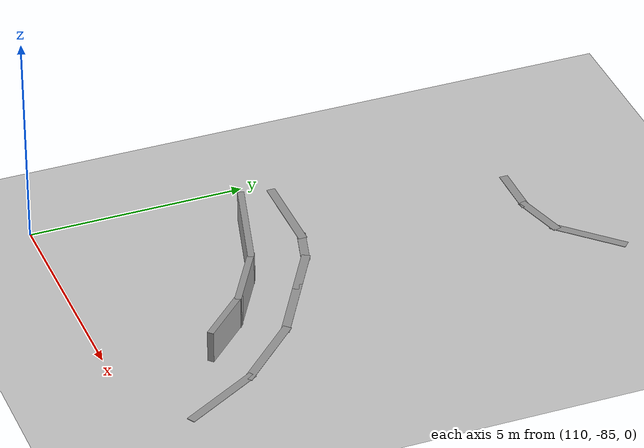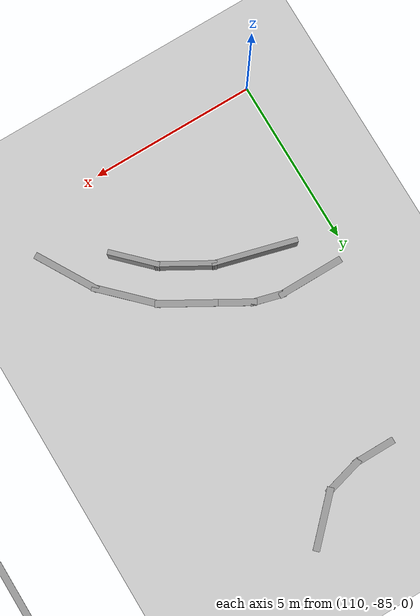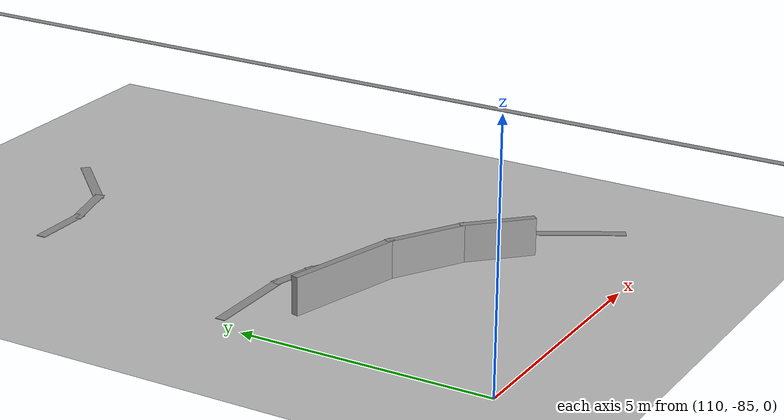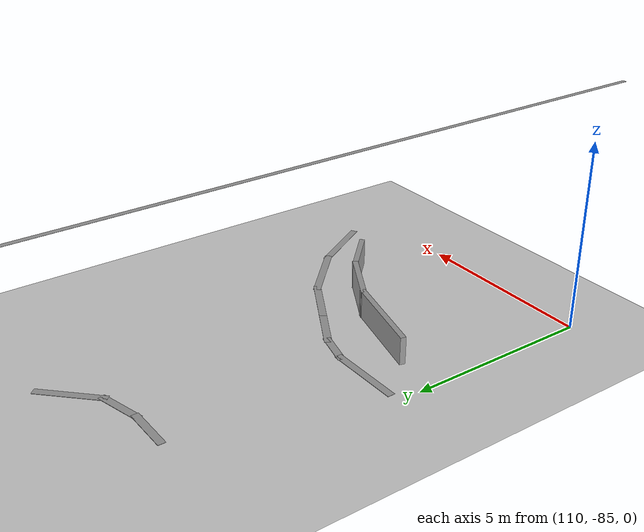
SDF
<sdf version="1.6">
 <world name="default">
  <model name="ground_plane">
   <static>1</static>
   <link name="link">
    <collision name="collision">
     <geometry><plane><normal>0 0 1</normal><size>100 100</size></plane></geometry>
     <surface>
      <contact><collide_bitmask>65535</collide_bitmask></contact>
      <friction><ode><mu>100</mu><mu2>50</mu2></ode></friction>
     </surface>
    </collision>
    <visual name="visual">
     <cast_shadows>0</cast_shadows>
     <geometry><plane><normal>0 0 1</normal><size>100 100</size></plane></geometry>
     <material>
      <script><uri>file://media/materials/scripts/gazebo.material</uri><name>Gazebo/Grey</name></script>
     </material>
    </visual>
   </link>
  </model>
  <model name="GercekDuvarSeritKoyu1">
   <link name="Wall_183">
    <pose>27.6816 55.3719 0 0 0 -2.35619</pose>
    <inertial>
     <mass>1</mass>
     <inertia><ixx>1</ixx><ixy>0</ixy><ixz>0</ixz><iyy>1</iyy><iyz>0</iyz><izz>1</izz></inertia>
    </inertial>
    <visual name="Wall_183_Visual">
     <pose>0 0 0.375 0 -0 0</pose>
     <geometry><box><size>1.5 0.15 0.75</size></box></geometry>
     <material>
      <script><uri>file://media/materials/scripts/gazebo.material</uri><name>Gazebo/Grey</name></script>
      <ambient>0.5 0.5 0.5 1</ambient>
      <shader type="pixel"><normal_map>__default__</normal_map></shader>
      <diffuse>0.7 0.7 0.7 1</diffuse>
      <specular>0.01 0.01 0.01 1</specular>
      <emissive>0 0 0 1</emissive>
     </material>
     <meta><layer>0</layer></meta>
    </visual>
    <collision name="Wall_183_Collision">
     <pose>0 0 0.375 0 -0 0</pose>
     <geometry><box><size>1.5 0.15 0.75</size></box></geometry>
     <surface>
      <friction>
       <ode><mu>1</mu><mu2>1</mu2><fdir1>0 0 0</fdir1><slip1>0</slip1><slip2>0</slip2></ode>
       <torsional>
        <coefficient>1</coefficient>
        <patch_radius>0</patch_radius>
        <surface_radius>0</surface_radius>
        <use_patch_radius>1</use_patch_radius>
        <ode><slip>0</slip></ode>
       </torsional>
      </friction>
      <bounce><restitution_coefficient>0</restitution_coefficient><threshold>1e+06</threshold></bounce>
      <contact>
       <collide_without_contact>0</collide_without_contact>
       <collide_without_contact_bitmask>1</collide_without_contact_bitmask>
       <collide_bitmask>1</collide_bitmask>
       <ode>
        <soft_cfm>0</soft_cfm>
        <soft_erp>0.2</soft_erp>
        <kp>1e+13</kp>
        <kd>1</kd>
        <max_vel>0.01</max_vel>
        <min_depth>0</min_depth>
       </ode>
       <bullet>
        <split_impulse>1</split_impulse>
        <split_impulse_penetration_threshold>-0.01</split_impulse_penetration_threshold>
        <soft_cfm>0</soft_cfm>
        <soft_erp>0.2</soft_erp>
        <kp>1e+13</kp>
        <kd>1</kd>
       </bullet>
      </contact>
     </surface>
    </collision>
   </link>
   <link name="Wall_184">
    <pose>26.8041 54.2019 0 0 0 -2.09459</pose>
    <inertial>
     <mass>1</mass>
     <inertia><ixx>1</ixx><ixy>0</ixy><ixz>0</ixz><iyy>1</iyy><iyz>0</iyz><izz>1</izz></inertia>
    </inertial>
    <visual name="Wall_184_Visual">
     <pose>0 0 0.375 0 -0 0</pose>
     <geometry><box><size>1.75 0.15 0.75</size></box></geometry>
     <material>
      <script><uri>file://media/materials/scripts/gazebo.material</uri><name>Gazebo/Grey</name></script>
      <ambient>0.5 0.5 0.5 1</ambient>
      <shader type="pixel"><normal_map>__default__</normal_map></shader>
      <diffuse>0.7 0.7 0.7 1</diffuse>
      <specular>0.01 0.01 0.01 1</specular>
      <emissive>0 0 0 1</emissive>
     </material>
     <meta><layer>0</layer></meta>
    </visual>
    <collision name="Wall_184_Collision">
     <pose>0 0 0.375 0 -0 0</pose>
     <geometry><box><size>1.75 0.15 0.75</size></box></geometry>
     <surface>
      <friction>
       <ode><mu>1</mu><mu2>1</mu2><fdir1>0 0 0</fdir1><slip1>0</slip1><slip2>0</slip2></ode>
       <torsional>
        <coefficient>1</coefficient>
        <patch_radius>0</patch_radius>
        <surface_radius>0</surface_radius>
        <use_patch_radius>1</use_patch_radius>
        <ode><slip>0</slip></ode>
       </torsional>
      </friction>
      <bounce><restitution_coefficient>0</restitution_coefficient><threshold>1e+06</threshold></bounce>
      <contact>
       <collide_without_contact>0</collide_without_contact>
       <collide_without_contact_bitmask>1</collide_without_contact_bitmask>
       <collide_bitmask>1</collide_bitmask>
       <ode>
        <soft_cfm>0</soft_cfm>
        <soft_erp>0.2</soft_erp>
        <kp>1e+13</kp>
        <kd>1</kd>
        <max_vel>0.01</max_vel>
        <min_depth>0</min_depth>
       </ode>
       <bullet>
        <split_impulse>1</split_impulse>
        <split_impulse_penetration_threshold>-0.01</split_impulse_penetration_threshold>
        <soft_cfm>0</soft_cfm>
        <soft_erp>0.2</soft_erp>
        <kp>1e+13</kp>
        <kd>1</kd>
       </bullet>
      </contact>
     </surface>
    </collision>
   </link>
   <link name="Wall_185">
    <pose>26.1001 52.3744 0 0 0 -1.83249</pose>
    <inertial>
     <mass>1</mass>
     <inertia><ixx>1</ixx><ixy>0</ixy><ixz>0</ixz><iyy>1</iyy><iyz>0</iyz><izz>1</izz></inertia>
    </inertial>
    <visual name="Wall_185_Visual">
     <pose>0 0 0.375 0 -0 0</pose>
     <geometry><box><size>2.5 0.15 0.75</size></box></geometry>
     <material>
      <script><uri>file://media/materials/scripts/gazebo.material</uri><name>Gazebo/Grey</name></script>
      <ambient>0.5 0.5 0.5 1</ambient>
      <shader type="pixel"><normal_map>__default__</normal_map></shader>
      <diffuse>0.7 0.7 0.7 1</diffuse>
      <specular>0.01 0.01 0.01 1</specular>
      <emissive>0 0 0 1</emissive>
     </material>
     <meta><layer>0</layer></meta>
    </visual>
    <collision name="Wall_185_Collision">
     <pose>0 0 0.375 0 -0 0</pose>
     <geometry><box><size>2.5 0.15 0.75</size></box></geometry>
     <surface>
      <friction>
       <ode><mu>1</mu><mu2>1</mu2><fdir1>0 0 0</fdir1><slip1>0</slip1><slip2>0</slip2></ode>
       <torsional>
        <coefficient>1</coefficient>
        <patch_radius>0</patch_radius>
        <surface_radius>0</surface_radius>
        <use_patch_radius>1</use_patch_radius>
        <ode><slip>0</slip></ode>
       </torsional>
      </friction>
      <bounce><restitution_coefficient>0</restitution_coefficient><threshold>1e+06</threshold></bounce>
      <contact>
       <collide_without_contact>0</collide_without_contact>
       <collide_without_contact_bitmask>1</collide_without_contact_bitmask>
       <collide_bitmask>1</collide_bitmask>
       <ode>
        <soft_cfm>0</soft_cfm>
        <soft_erp>0.2</soft_erp>
        <kp>1e+13</kp>
        <kd>1</kd>
        <max_vel>0.01</max_vel>
        <min_depth>0</min_depth>
       </ode>
       <bullet>
        <split_impulse>1</split_impulse>
        <split_impulse_penetration_threshold>-0.01</split_impulse_penetration_threshold>
        <soft_cfm>0</soft_cfm>
        <soft_erp>0.2</soft_erp>
        <kp>1e+13</kp>
        <kd>1</kd>
       </bullet>
      </contact>
     </surface>
    </collision>
   </link>
   <link name="Wall_291">
    <pose>21.0001 62.9264 0 0 -0 3.14159</pose>
    <visual name="Wall_291_Visual">
     <pose>0 0 0.005 0 -0 0</pose>
     <geometry><box><size>54.2998 0.2 0.01</size></box></geometry>
     <material>
      <script><uri>file://media/materials/scripts/gazebo.material</uri><name>Gazebo/Grey</name></script>
      <ambient>1 1 1 1</ambient>
      <shader type="pixel"/>
     </material>
     <meta><layer>0</layer></meta>
    </visual>
    <collision name="Wall_291_Collision">
     <pose>0 0 0.005 0 -0 0</pose>
     <geometry><box><size>54.2998 0.2 0.01</size></box></geometry>
     <surface>
      <friction>
       <ode><mu>1</mu><mu2>1</mu2><fdir1>0 0 0</fdir1><slip1>0</slip1><slip2>0</slip2></ode>
       <torsional>
        <coefficient>1</coefficient>
        <patch_radius>0</patch_radius>
        <surface_radius>0</surface_radius>
        <use_patch_radius>1</use_patch_radius>
        <ode><slip>0</slip></ode>
       </torsional>
      </friction>
      <bounce><restitution_coefficient>0</restitution_coefficient><threshold>1e+06</threshold></bounce>
      <contact>
       <collide_without_contact>0</collide_without_contact>
       <collide_without_contact_bitmask>1</collide_without_contact_bitmask>
       <collide_bitmask>1</collide_bitmask>
       <ode>
        <soft_cfm>0</soft_cfm>
        <soft_erp>0.2</soft_erp>
        <kp>1e+13</kp>
        <kd>1</kd>
        <max_vel>0.01</max_vel>
        <min_depth>0</min_depth>
       </ode>
       <bullet>
        <split_impulse>1</split_impulse>
        <split_impulse_penetration_threshold>-0.01</split_impulse_penetration_threshold>
        <soft_cfm>0</soft_cfm>
        <soft_erp>0.2</soft_erp>
        <kp>1e+13</kp>
        <kd>1</kd>
       </bullet>
      </contact>
     </surface>
    </collision>
   </link>
   <link name="Wall_502">
    <pose>28.4271 57.1879 0 0 0 -2.61795</pose>
    <visual name="Wall_502_Visual">
     <pose>0 0 0.005 0 -0 0</pose>
     <geometry><box><size>2.05029 0.2 0.01</size></box></geometry>
     <material>
      <script><uri>file://media/materials/scripts/gazebo.material</uri><name>Gazebo/Grey</name></script>
      <ambient>1 1 1 1</ambient>
      <shader type="pixel"/>
     </material>
     <meta><layer>0</layer></meta>
    </visual>
    <collision name="Wall_502_Collision">
     <pose>0 0 0.005 0 -0 0</pose>
     <geometry><box><size>2.05029 0.2 0.01</size></box></geometry>
     <surface>
      <friction>
       <ode><mu>1</mu><mu2>1</mu2><fdir1>0 0 0</fdir1><slip1>0</slip1><slip2>0</slip2></ode>
       <torsional>
        <coefficient>1</coefficient>
        <patch_radius>0</patch_radius>
        <surface_radius>0</surface_radius>
        <use_patch_radius>1</use_patch_radius>
        <ode><slip>0</slip></ode>
       </torsional>
      </friction>
      <bounce><restitution_coefficient>0</restitution_coefficient><threshold>1e+06</threshold></bounce>
      <contact>
       <collide_without_contact>0</collide_without_contact>
       <collide_without_contact_bitmask>1</collide_without_contact_bitmask>
       <collide_bitmask>1</collide_bitmask>
       <ode>
        <soft_cfm>0</soft_cfm>
        <soft_erp>0.2</soft_erp>
        <kp>1e+13</kp>
        <kd>1</kd>
        <max_vel>0.01</max_vel>
        <min_depth>0</min_depth>
       </ode>
       <bullet>
        <split_impulse>1</split_impulse>
        <split_impulse_penetration_threshold>-0.01</split_impulse_penetration_threshold>
        <soft_cfm>0</soft_cfm>
        <soft_erp>0.2</soft_erp>
        <kp>1e+13</kp>
        <kd>1</kd>
       </bullet>
      </contact>
     </surface>
    </collision>
   </link>
   <link name="Wall_503">
    <pose>26.9716 56.0714 0 0 0 -2.35658</pose>
    <visual name="Wall_503_Visual">
     <pose>0 0 0.005 0 -0 0</pose>
     <geometry><box><size>2.05034 0.2 0.01</size></box></geometry>
     <material>
      <script><uri>file://media/materials/scripts/gazebo.material</uri><name>Gazebo/Grey</name></script>
      <ambient>1 1 1 1</ambient>
      <shader type="pixel"/>
     </material>
     <meta><layer>0</layer></meta>
    </visual>
    <collision name="Wall_503_Collision">
     <pose>0 0 0.005 0 -0 0</pose>
     <geometry><box><size>2.05034 0.2 0.01</size></box></geometry>
     <surface>
      <friction>
       <ode><mu>1</mu><mu2>1</mu2><fdir1>0 0 0</fdir1><slip1>0</slip1><slip2>0</slip2></ode>
       <torsional>
        <coefficient>1</coefficient>
        <patch_radius>0</patch_radius>
        <surface_radius>0</surface_radius>
        <use_patch_radius>1</use_patch_radius>
        <ode><slip>0</slip></ode>
       </torsional>
      </friction>
      <bounce><restitution_coefficient>0</restitution_coefficient><threshold>1e+06</threshold></bounce>
      <contact>
       <collide_without_contact>0</collide_without_contact>
       <collide_without_contact_bitmask>1</collide_without_contact_bitmask>
       <collide_bitmask>1</collide_bitmask>
       <ode>
        <soft_cfm>0</soft_cfm>
        <soft_erp>0.2</soft_erp>
        <kp>1e+13</kp>
        <kd>1</kd>
        <max_vel>0.01</max_vel>
        <min_depth>0</min_depth>
       </ode>
       <bullet>
        <split_impulse>1</split_impulse>
        <split_impulse_penetration_threshold>-0.01</split_impulse_penetration_threshold>
        <soft_cfm>0</soft_cfm>
        <soft_erp>0.2</soft_erp>
        <kp>1e+13</kp>
        <kd>1</kd>
       </bullet>
      </contact>
     </surface>
    </collision>
   </link>
   <link name="Wall_504">
    <pose>25.9171 54.7244 0 0 0 -2.09428</pose>
    <visual name="Wall_504_Visual">
     <pose>0 0 0.005 0 -0 0</pose>
     <geometry><box><size>1.79994 0.2 0.01</size></box></geometry>
     <material>
      <script><uri>file://media/materials/scripts/gazebo.material</uri><name>Gazebo/Grey</name></script>
      <ambient>1 1 1 1</ambient>
      <shader type="pixel"/>
     </material>
     <meta><layer>0</layer></meta>
    </visual>
    <collision name="Wall_504_Collision">
     <pose>0 0 0.005 0 -0 0</pose>
     <geometry><box><size>1.79994 0.2 0.01</size></box></geometry>
     <surface>
      <friction>
       <ode><mu>1</mu><mu2>1</mu2><fdir1>0 0 0</fdir1><slip1>0</slip1><slip2>0</slip2></ode>
       <torsional>
        <coefficient>1</coefficient>
        <patch_radius>0</patch_radius>
        <surface_radius>0</surface_radius>
        <use_patch_radius>1</use_patch_radius>
        <ode><slip>0</slip></ode>
       </torsional>
      </friction>
      <bounce><restitution_coefficient>0</restitution_coefficient><threshold>1e+06</threshold></bounce>
      <contact>
       <collide_without_contact>0</collide_without_contact>
       <collide_without_contact_bitmask>1</collide_without_contact_bitmask>
       <collide_bitmask>1</collide_bitmask>
       <ode>
        <soft_cfm>0</soft_cfm>
        <soft_erp>0.2</soft_erp>
        <kp>1e+13</kp>
        <kd>1</kd>
        <max_vel>0.01</max_vel>
        <min_depth>0</min_depth>
       </ode>
       <bullet>
        <split_impulse>1</split_impulse>
        <split_impulse_penetration_threshold>-0.01</split_impulse_penetration_threshold>
        <soft_cfm>0</soft_cfm>
        <soft_erp>0.2</soft_erp>
        <kp>1e+13</kp>
        <kd>1</kd>
       </bullet>
      </contact>
     </surface>
    </collision>
   </link>
   <link name="Wall_505">
    <pose>25.2421 53.5554 0 0 0 -2.09468</pose>
    <visual name="Wall_505_Visual">
     <pose>0 0 0.005 0 -0 0</pose>
     <geometry><box><size>1.29963 0.2 0.01</size></box></geometry>
     <material>
      <script><uri>file://media/materials/scripts/gazebo.material</uri><name>Gazebo/Grey</name></script>
      <ambient>1 1 1 1</ambient>
      <shader type="pixel"/>
     </material>
     <meta><layer>0</layer></meta>
    </visual>
    <collision name="Wall_505_Collision">
     <pose>0 0 0.005 0 -0 0</pose>
     <geometry><box><size>1.29963 0.2 0.01</size></box></geometry>
     <surface>
      <friction>
       <ode><mu>1</mu><mu2>1</mu2><fdir1>0 0 0</fdir1><slip1>0</slip1><slip2>0</slip2></ode>
       <torsional>
        <coefficient>1</coefficient>
        <patch_radius>0</patch_radius>
        <surface_radius>0</surface_radius>
        <use_patch_radius>1</use_patch_radius>
        <ode><slip>0</slip></ode>
       </torsional>
      </friction>
      <bounce><restitution_coefficient>0</restitution_coefficient><threshold>1e+06</threshold></bounce>
      <contact>
       <collide_without_contact>0</collide_without_contact>
       <collide_without_contact_bitmask>1</collide_without_contact_bitmask>
       <collide_bitmask>1</collide_bitmask>
       <ode>
        <soft_cfm>0</soft_cfm>
        <soft_erp>0.2</soft_erp>
        <kp>1e+13</kp>
        <kd>1</kd>
        <max_vel>0.01</max_vel>
        <min_depth>0</min_depth>
       </ode>
       <bullet>
        <split_impulse>1</split_impulse>
        <split_impulse_penetration_threshold>-0.01</split_impulse_penetration_threshold>
        <soft_cfm>0</soft_cfm>
        <soft_erp>0.2</soft_erp>
        <kp>1e+13</kp>
        <kd>1</kd>
       </bullet>
      </contact>
     </surface>
    </collision>
   </link>
   <link name="Wall_507">
    <pose>24.8571 52.6689 0 0 0 -1.83261</pose>
    <visual name="Wall_507_Visual">
     <pose>0 0 0.005 0 -0 0</pose>
     <geometry><box><size>1.05031 0.2 0.01</size></box></geometry>
     <material>
      <script><uri>file://media/materials/scripts/gazebo.material</uri><name>Gazebo/Grey</name></script>
      <ambient>1 1 1 1</ambient>
      <shader type="pixel"/>
     </material>
     <meta><layer>0</layer></meta>
    </visual>
    <collision name="Wall_507_Collision">
     <pose>0 0 0.005 0 -0 0</pose>
     <geometry><box><size>1.05031 0.2 0.01</size></box></geometry>
     <surface>
      <friction>
       <ode><mu>1</mu><mu2>1</mu2><fdir1>0 0 0</fdir1><slip1>0</slip1><slip2>0</slip2></ode>
       <torsional>
        <coefficient>1</coefficient>
        <patch_radius>0</patch_radius>
        <surface_radius>0</surface_radius>
        <use_patch_radius>1</use_patch_radius>
        <ode><slip>0</slip></ode>
       </torsional>
      </friction>
      <bounce><restitution_coefficient>0</restitution_coefficient><threshold>1e+06</threshold></bounce>
      <contact>
       <collide_without_contact>0</collide_without_contact>
       <collide_without_contact_bitmask>1</collide_without_contact_bitmask>
       <collide_bitmask>1</collide_bitmask>
       <ode>
        <soft_cfm>0</soft_cfm>
        <soft_erp>0.2</soft_erp>
        <kp>1e+13</kp>
        <kd>1</kd>
        <max_vel>0.01</max_vel>
        <min_depth>0</min_depth>
       </ode>
       <bullet>
        <split_impulse>1</split_impulse>
        <split_impulse_penetration_threshold>-0.01</split_impulse_penetration_threshold>
        <soft_cfm>0</soft_cfm>
        <soft_erp>0.2</soft_erp>
        <kp>1e+13</kp>
        <kd>1</kd>
       </bullet>
      </contact>
     </surface>
    </collision>
   </link>
   <link name="Wall_508">
    <pose>24.7471 51.3334 0 0 0 -1.5708</pose>
    <visual name="Wall_508_Visual">
     <pose>0 0 0.005 0 -0 0</pose>
     <geometry><box><size>2.05045 0.2 0.01</size></box></geometry>
     <material>
      <script><uri>file://media/materials/scripts/gazebo.material</uri><name>Gazebo/Grey</name></script>
      <ambient>1 1 1 1</ambient>
      <shader type="pixel"/>
     </material>
     <meta><layer>0</layer></meta>
    </visual>
    <collision name="Wall_508_Collision">
     <pose>0 0 0.005 0 -0 0</pose>
     <geometry><box><size>2.05045 0.2 0.01</size></box></geometry>
     <surface>
      <friction>
       <ode><mu>1</mu><mu2>1</mu2><fdir1>0 0 0</fdir1><slip1>0</slip1><slip2>0</slip2></ode>
       <torsional>
        <coefficient>1</coefficient>
        <patch_radius>0</patch_radius>
        <surface_radius>0</surface_radius>
        <use_patch_radius>1</use_patch_radius>
        <ode><slip>0</slip></ode>
       </torsional>
      </friction>
      <bounce><restitution_coefficient>0</restitution_coefficient><threshold>1e+06</threshold></bounce>
      <contact>
       <collide_without_contact>0</collide_without_contact>
       <collide_without_contact_bitmask>1</collide_without_contact_bitmask>
       <collide_bitmask>1</collide_bitmask>
       <ode>
        <soft_cfm>0</soft_cfm>
        <soft_erp>0.2</soft_erp>
        <kp>1e+13</kp>
        <kd>1</kd>
        <max_vel>0.01</max_vel>
        <min_depth>0</min_depth>
       </ode>
       <bullet>
        <split_impulse>1</split_impulse>
        <split_impulse_penetration_threshold>-0.01</split_impulse_penetration_threshold>
        <soft_cfm>0</soft_cfm>
        <soft_erp>0.2</soft_erp>
        <kp>1e+13</kp>
        <kd>1</kd>
       </bullet>
      </contact>
     </surface>
    </collision>
   </link>
   <link name="Wall_546">
    <pose>19.6331 52.3814 0 0 -0 1.5708</pose>
    <visual name="Wall_546_Visual">
     <pose>0 0 0.005 0 -0 0</pose>
     <geometry><box><size>1.29976 0.2 0.01</size></box></geometry>
     <material>
      <script><uri>file://media/materials/scripts/gazebo.material</uri><name>Gazebo/Grey</name></script>
      <ambient>1 1 1 1</ambient>
      <shader type="pixel"/>
     </material>
     <meta><layer>0</layer></meta>
    </visual>
    <collision name="Wall_546_Collision">
     <pose>0 0 0.005 0 -0 0</pose>
     <geometry><box><size>1.29976 0.2 0.01</size></box></geometry>
     <surface>
      <friction>
       <ode><mu>1</mu><mu2>1</mu2><fdir1>0 0 0</fdir1><slip1>0</slip1><slip2>0</slip2></ode>
       <torsional>
        <coefficient>1</coefficient>
        <patch_radius>0</patch_radius>
        <surface_radius>0</surface_radius>
        <use_patch_radius>1</use_patch_radius>
        <ode><slip>0</slip></ode>
       </torsional>
      </friction>
      <bounce><restitution_coefficient>0</restitution_coefficient><threshold>1e+06</threshold></bounce>
      <contact>
       <collide_without_contact>0</collide_without_contact>
       <collide_without_contact_bitmask>1</collide_without_contact_bitmask>
       <collide_bitmask>1</collide_bitmask>
       <ode>
        <soft_cfm>0</soft_cfm>
        <soft_erp>0.2</soft_erp>
        <kp>1e+13</kp>
        <kd>1</kd>
        <max_vel>0.01</max_vel>
        <min_depth>0</min_depth>
       </ode>
       <bullet>
        <split_impulse>1</split_impulse>
        <split_impulse_penetration_threshold>-0.01</split_impulse_penetration_threshold>
        <soft_cfm>0</soft_cfm>
        <soft_erp>0.2</soft_erp>
        <kp>1e+13</kp>
        <kd>1</kd>
       </bullet>
      </contact>
     </surface>
    </collision>
   </link>
   <link name="Wall_547">
    <pose>19.4906 53.4624 0 0 -0 1.83298</pose>
    <visual name="Wall_547_Visual">
     <pose>0 0 0.005 0 -0 0</pose>
     <geometry><box><size>1.29984 0.2 0.01</size></box></geometry>
     <material>
      <script><uri>file://media/materials/scripts/gazebo.material</uri><name>Gazebo/Grey</name></script>
      <ambient>1 1 1 1</ambient>
      <shader type="pixel"/>
     </material>
     <meta><layer>0</layer></meta>
    </visual>
    <collision name="Wall_547_Collision">
     <pose>0 0 0.005 0 -0 0</pose>
     <geometry><box><size>1.29984 0.2 0.01</size></box></geometry>
     <surface>
      <friction>
       <ode><mu>1</mu><mu2>1</mu2><fdir1>0 0 0</fdir1><slip1>0</slip1><slip2>0</slip2></ode>
       <torsional>
        <coefficient>1</coefficient>
        <patch_radius>0</patch_radius>
        <surface_radius>0</surface_radius>
        <use_patch_radius>1</use_patch_radius>
        <ode><slip>0</slip></ode>
       </torsional>
      </friction>
      <bounce><restitution_coefficient>0</restitution_coefficient><threshold>1e+06</threshold></bounce>
      <contact>
       <collide_without_contact>0</collide_without_contact>
       <collide_without_contact_bitmask>1</collide_without_contact_bitmask>
       <collide_bitmask>1</collide_bitmask>
       <ode>
        <soft_cfm>0</soft_cfm>
        <soft_erp>0.2</soft_erp>
        <kp>1e+13</kp>
        <kd>1</kd>
        <max_vel>0.01</max_vel>
        <min_depth>0</min_depth>
       </ode>
       <bullet>
        <split_impulse>1</split_impulse>
        <split_impulse_penetration_threshold>-0.01</split_impulse_penetration_threshold>
        <soft_cfm>0</soft_cfm>
        <soft_erp>0.2</soft_erp>
        <kp>1e+13</kp>
        <kd>1</kd>
       </bullet>
      </contact>
     </surface>
    </collision>
   </link>
   <link name="Wall_548">
    <pose>18.7736 54.5594 0 0 -0 2.36365</pose>
    <visual name="Wall_548_Visual">
     <pose>0 0 0.005 0 -0 0</pose>
     <geometry><box><size>1.81296 0.2 0.01</size></box></geometry>
     <material>
      <script><uri>file://media/materials/scripts/gazebo.material</uri><name>Gazebo/Grey</name></script>
      <ambient>1 1 1 1</ambient>
      <shader type="pixel"/>
     </material>
     <meta><layer>0</layer></meta>
    </visual>
    <collision name="Wall_548_Collision">
     <pose>0 0 0.005 0 -0 0</pose>
     <geometry><box><size>1.81296 0.2 0.01</size></box></geometry>
     <surface>
      <friction>
       <ode><mu>1</mu><mu2>1</mu2><fdir1>0 0 0</fdir1><slip1>0</slip1><slip2>0</slip2></ode>
       <torsional>
        <coefficient>1</coefficient>
        <patch_radius>0</patch_radius>
        <surface_radius>0</surface_radius>
        <use_patch_radius>1</use_patch_radius>
        <ode><slip>0</slip></ode>
       </torsional>
      </friction>
      <bounce><restitution_coefficient>0</restitution_coefficient><threshold>1e+06</threshold></bounce>
      <contact>
       <collide_without_contact>0</collide_without_contact>
       <collide_without_contact_bitmask>1</collide_without_contact_bitmask>
       <collide_bitmask>1</collide_bitmask>
       <ode>
        <soft_cfm>0</soft_cfm>
        <soft_erp>0.2</soft_erp>
        <kp>1e+13</kp>
        <kd>1</kd>
        <max_vel>0.01</max_vel>
        <min_depth>0</min_depth>
       </ode>
       <bullet>
        <split_impulse>1</split_impulse>
        <split_impulse_penetration_threshold>-0.01</split_impulse_penetration_threshold>
        <soft_cfm>0</soft_cfm>
        <soft_erp>0.2</soft_erp>
        <kp>1e+13</kp>
        <kd>1</kd>
       </bullet>
      </contact>
     </surface>
    </collision>
   </link>
   <static>1</static>
   <pose>59.9324 -54.7034 -0 0 0 -1.5695</pose>
  </model>
 </world>
</sdf>
